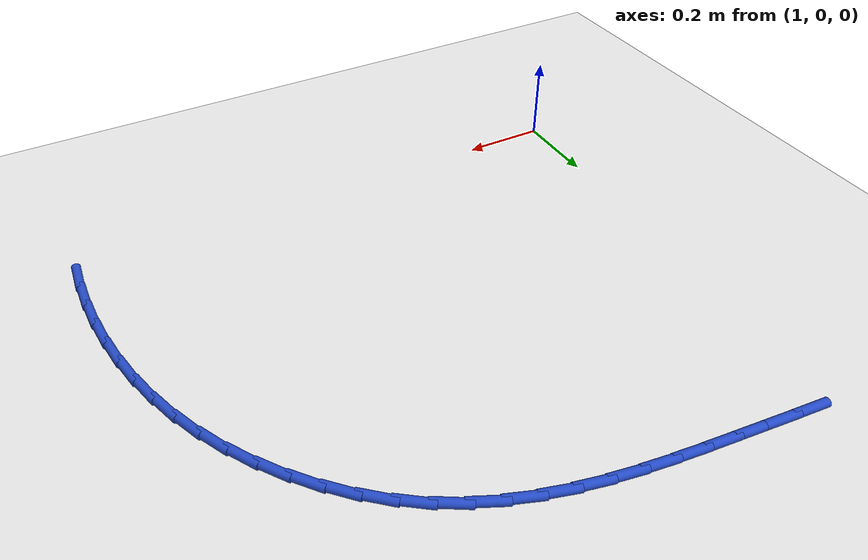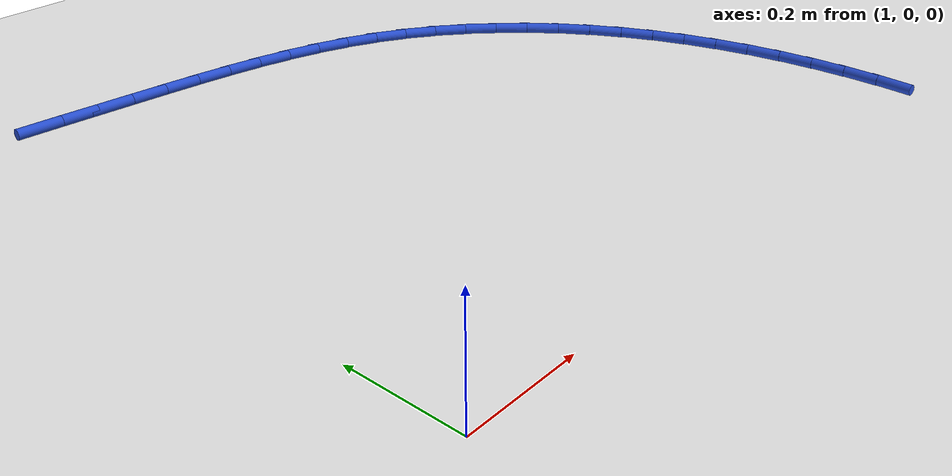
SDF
<sdf version="1.6">
 <world name="default">
  <model name="ground_plane">
   <static>1</static>
   <link name="link">
    <collision name="collision">
     <geometry><plane><normal>0 0 1</normal><size>100 100</size></plane></geometry>
     <surface><friction><ode><mu>100</mu><mu2>50</mu2></ode></friction></surface>
    </collision>
    <visual name="visual">
     <cast_shadows>0</cast_shadows>
     <geometry><plane><normal>0 0 1</normal><size>100 100</size></plane></geometry>
     <material>
      <script><uri>file://media/materials/scripts/gazebo.material</uri><name>Gazebo/WhiteGlow</name></script>
     </material>
    </visual>
   </link>
  </model>
  <model name="line">
   <link name="link_27">
    <pose>1.1058199554723254 1.0628398194272064 0.01 0 1.57 -0.10254333403064227</pose>
    <collision name="collision">
     <geometry><cylinder><radius>0.01</radius><length>0.08</length></cylinder></geometry>
    </collision>
    <visual name="visual">
     <material>
      <script><name>Gazebo/Blue</name><uri>file://media/materials/scripts/gazebo.material</uri></script>
     </material>
     <geometry><cylinder><radius>0.01</radius><length>0.08</length></cylinder></geometry>
    </visual>
   </link>
   <link name="link_28">
    <pose>1.1717897538264137 1.056051245403698 0.01 0 1.57 -0.11012352474962982</pose>
    <collision name="collision">
     <geometry><cylinder><radius>0.01</radius><length>0.08</length></cylinder></geometry>
    </collision>
    <visual name="visual">
     <material>
      <script><name>Gazebo/Blue</name><uri>file://media/materials/scripts/gazebo.material</uri></script>
     </material>
     <geometry><cylinder><radius>0.01</radius><length>0.08</length></cylinder></geometry>
    </visual>
   </link>
   <link name="link_29">
    <pose>1.2378573557714145 1.0487460939820261 0.01 0 1.57 -0.10984799863473728</pose>
    <collision name="collision">
     <geometry><cylinder><radius>0.01</radius><length>0.08</length></cylinder></geometry>
    </collision>
    <visual name="visual">
     <material>
      <script><name>Gazebo/Blue</name><uri>file://media/materials/scripts/gazebo.material</uri></script>
     </material>
     <geometry><cylinder><radius>0.01</radius><length>0.08</length></cylinder></geometry>
    </visual>
   </link>
   <link name="link_30">
    <pose>1.3037863648337324 1.041474653584059 0.01 0 1.57 -0.11503047317858109</pose>
    <collision name="collision">
     <geometry><cylinder><radius>0.01</radius><length>0.08</length></cylinder></geometry>
    </collision>
    <visual name="visual">
     <material>
      <script><name>Gazebo/Blue</name><uri>file://media/materials/scripts/gazebo.material</uri></script>
     </material>
     <geometry><cylinder><radius>0.01</radius><length>0.08</length></cylinder></geometry>
    </visual>
   </link>
   <link name="link_31">
    <pose>1.3693351823078963 1.0339011081804632 0.01 0 1.57 -0.13002454433700933</pose>
    <collision name="collision">
     <geometry><cylinder><radius>0.01</radius><length>0.08</length></cylinder></geometry>
    </collision>
    <visual name="visual">
     <material>
      <script><name>Gazebo/Blue</name><uri>file://media/materials/scripts/gazebo.material</uri></script>
     </material>
     <geometry><cylinder><radius>0.01</radius><length>0.08</length></cylinder></geometry>
    </visual>
   </link>
   <link name="link_32">
    <pose>1.434260575463188 1.0254113156156623 0.01 0 1.57 -0.1551659558947544</pose>
    <collision name="collision">
     <geometry><cylinder><radius>0.01</radius><length>0.08</length></cylinder></geometry>
    </collision>
    <visual name="visual">
     <material>
      <script><name>Gazebo/Blue</name><uri>file://media/materials/scripts/gazebo.material</uri></script>
     </material>
     <geometry><cylinder><radius>0.01</radius><length>0.08</length></cylinder></geometry>
    </visual>
   </link>
   <link name="link_33">
    <pose>1.4983193109811568 1.0153910336247927 0.01 0 1.57 -0.1908991197407137</pose>
    <collision name="collision">
     <geometry><cylinder><radius>0.01</radius><length>0.08</length></cylinder></geometry>
    </collision>
    <visual name="visual">
     <material>
      <script><name>Gazebo/Blue</name><uri>file://media/materials/scripts/gazebo.material</uri></script>
     </material>
     <geometry><cylinder><radius>0.01</radius><length>0.08</length></cylinder></geometry>
    </visual>
   </link>
   <link name="link_34">
    <pose>1.5612681555433516 1.0032260199429912 0.01 0 1.57 -0.23770852791926725</pose>
    <collision name="collision">
     <geometry><cylinder><radius>0.01</radius><length>0.08</length></cylinder></geometry>
    </collision>
    <visual name="visual">
     <material>
      <script><name>Gazebo/Blue</name><uri>file://media/materials/scripts/gazebo.material</uri></script>
     </material>
     <geometry><cylinder><radius>0.01</radius><length>0.08</length></cylinder></geometry>
    </visual>
   </link>
   <link name="link_35">
    <pose>1.6228638758313236 0.9883020323053939 0.01 0 1.57 -0.2959979413517553</pose>
    <collision name="collision">
     <geometry><cylinder><radius>0.01</radius><length>0.08</length></cylinder></geometry>
    </collision>
    <visual name="visual">
     <material>
      <script><name>Gazebo/Blue</name><uri>file://media/materials/scripts/gazebo.material</uri></script>
     </material>
     <geometry><cylinder><radius>0.01</radius><length>0.08</length></cylinder></geometry>
    </visual>
   </link>
   <link name="link_36">
    <pose>1.682863238526621 0.9700048284471373 0.01 0 1.57 -0.36590784254636405</pose>
    <collision name="collision">
     <geometry><cylinder><radius>0.01</radius><length>0.08</length></cylinder></geometry>
    </collision>
    <visual name="visual">
     <material>
      <script><name>Gazebo/Blue</name><uri>file://media/materials/scripts/gazebo.material</uri></script>
     </material>
     <geometry><cylinder><radius>0.01</radius><length>0.08</length></cylinder></geometry>
    </visual>
   </link>
   <link name="link_37">
    <pose>1.7410230103107933 0.9477201661033575 0.01 0 1.57 -0.447076793574274</pose>
    <collision name="collision">
     <geometry><cylinder><radius>0.01</radius><length>0.08</length></cylinder></geometry>
    </collision>
    <visual name="visual">
     <material>
      <script><name>Gazebo/Blue</name><uri>file://media/materials/scripts/gazebo.material</uri></script>
     </material>
     <geometry><cylinder><radius>0.01</radius><length>0.08</length></cylinder></geometry>
    </visual>
   </link>
   <link name="link_38">
    <pose>1.7970999578653912 0.9208338030091914 0.01 0 1.57 -0.5378250684793039</pose>
    <collision name="collision">
     <geometry><cylinder><radius>0.01</radius><length>0.08</length></cylinder></geometry>
    </collision>
    <visual name="visual">
     <material>
      <script><name>Gazebo/Blue</name><uri>file://media/materials/scripts/gazebo.material</uri></script>
     </material>
     <geometry><cylinder><radius>0.01</radius><length>0.08</length></cylinder></geometry>
    </visual>
   </link>
   <link name="link_39">
    <pose>1.8508497279519933 0.8887732987692444 0.01 0 1.57 -0.6287752637384998</pose>
    <collision name="collision">
     <geometry><cylinder><radius>0.01</radius><length>0.08</length></cylinder></geometry>
    </collision>
    <visual name="visual">
     <material>
      <script><name>Gazebo/Blue</name><uri>file://media/materials/scripts/gazebo.material</uri></script>
     </material>
     <geometry><cylinder><radius>0.01</radius><length>0.08</length></cylinder></geometry>
    </visual>
   </link>
   <link name="link_40">
    <pose>1.9020118958371275 0.8515660938330911 0.01 0 1.57 -0.714275087071141</pose>
    <collision name="collision">
     <geometry><cylinder><radius>0.01</radius><length>0.08</length></cylinder></geometry>
    </collision>
    <visual name="visual">
     <material>
      <script><name>Gazebo/Blue</name><uri>file://media/materials/scripts/gazebo.material</uri></script>
     </material>
     <geometry><cylinder><radius>0.01</radius><length>0.08</length></cylinder></geometry>
    </visual>
   </link>
   <link name="link_41">
    <pose>1.9503140065613926 0.8096886660343282 0.01 0 1.57 -0.7951647103295519</pose>
    <collision name="collision">
     <geometry><cylinder><radius>0.01</radius><length>0.08</length></cylinder></geometry>
    </collision>
    <visual name="visual">
     <material>
      <script><name>Gazebo/Blue</name><uri>file://media/materials/scripts/gazebo.material</uri></script>
     </material>
     <geometry><cylinder><radius>0.01</radius><length>0.08</length></cylinder></geometry>
    </visual>
   </link>
   <link name="link_42">
    <pose>1.9954833148122695 0.7636283308588169 0.01 0 1.57 -0.872504479378265</pose>
    <collision name="collision">
     <geometry><cylinder><radius>0.01</radius><length>0.08</length></cylinder></geometry>
    </collision>
    <visual name="visual">
     <material>
      <script><name>Gazebo/Blue</name><uri>file://media/materials/scripts/gazebo.material</uri></script>
     </material>
     <geometry><cylinder><radius>0.01</radius><length>0.08</length></cylinder></geometry>
    </visual>
   </link>
   <link name="link_43">
    <pose>2.0372470752772394 0.7138724037924201 0.01 0 1.57 -0.9473798382027793</pose>
    <collision name="collision">
     <geometry><cylinder><radius>0.01</radius><length>0.08</length></cylinder></geometry>
    </collision>
    <visual name="visual">
     <material>
      <script><name>Gazebo/Blue</name><uri>file://media/materials/scripts/gazebo.material</uri></script>
     </material>
     <geometry><cylinder><radius>0.01</radius><length>0.08</length></cylinder></geometry>
    </visual>
   </link>
   <link name="link_44">
    <pose>2.0753325426437805 0.6609082003209994 0.01 0 1.57 -1.0208803284860288</pose>
    <collision name="collision">
     <geometry><cylinder><radius>0.01</radius><length>0.08</length></cylinder></geometry>
    </collision>
    <visual name="visual">
     <material>
      <script><name>Gazebo/Blue</name><uri>file://media/materials/scripts/gazebo.material</uri></script>
     </material>
     <geometry><cylinder><radius>0.01</radius><length>0.08</length></cylinder></geometry>
    </visual>
   </link>
   <link name="link_45">
    <pose>2.1094669715993737 0.6052230359304167 0.01 0 1.57 -1.0940935851551947</pose>
    <collision name="collision">
     <geometry><cylinder><radius>0.01</radius><length>0.08</length></cylinder></geometry>
    </collision>
    <visual name="visual">
     <material>
      <script><name>Gazebo/Blue</name><uri>file://media/materials/scripts/gazebo.material</uri></script>
     </material>
     <geometry><cylinder><radius>0.01</radius><length>0.08</length></cylinder></geometry>
    </visual>
   </link>
   <link name="link_46">
    <pose>2.139377905597998 0.5473040474067737 0.01 0 1.57 -1.1670076441086914</pose>
    <collision name="collision">
     <geometry><cylinder><radius>0.01</radius><length>0.08</length></cylinder></geometry>
    </collision>
    <visual name="visual">
     <material>
      <script><name>Gazebo/Blue</name><uri>file://media/materials/scripts/gazebo.material</uri></script>
     </material>
     <geometry><cylinder><radius>0.01</radius><length>0.08</length></cylinder></geometry>
    </visual>
   </link>
   <link name="link_47">
    <pose>2.1648991317385438 0.4875726239027731 0.01 0 1.57 -1.2373305371319234</pose>
    <collision name="collision">
     <geometry><cylinder><radius>0.01</radius><length>0.08</length></cylinder></geometry>
    </collision>
    <visual name="visual">
     <material>
      <script><name>Gazebo/Blue</name><uri>file://media/materials/scripts/gazebo.material</uri></script>
     </material>
     <geometry><cylinder><radius>0.01</radius><length>0.08</length></cylinder></geometry>
    </visual>
   </link>
   <link name="link_48">
    <pose>2.186128725452451 0.4262866028366647 0.01 0 1.57 -1.3045206435470253</pose>
    <collision name="collision">
     <geometry><cylinder><radius>0.01</radius><length>0.08</length></cylinder></geometry>
    </collision>
    <visual name="visual">
     <material>
      <script><name>Gazebo/Blue</name><uri>file://media/materials/scripts/gazebo.material</uri></script>
     </material>
     <geometry><cylinder><radius>0.01</radius><length>0.08</length></cylinder></geometry>
    </visual>
   </link>
   <link name="link_49">
    <pose>2.2032051654679345 0.3636788185204269 0.01 0 1.57 -1.3685383873101222</pose>
    <collision name="collision">
     <geometry><cylinder><radius>0.01</radius><length>0.08</length></cylinder></geometry>
    </collision>
    <visual name="visual">
     <material>
      <script><name>Gazebo/Blue</name><uri>file://media/materials/scripts/gazebo.material</uri></script>
     </material>
     <geometry><cylinder><radius>0.01</radius><length>0.08</length></cylinder></geometry>
    </visual>
   </link>
   <link name="link_50">
    <pose>2.216266930513207 0.29998210526603797 0.01 0 1.57 -1.4294498054431708</pose>
    <collision name="collision">
     <geometry><cylinder><radius>0.01</radius><length>0.08</length></cylinder></geometry>
    </collision>
    <visual name="visual">
     <material>
      <script><name>Gazebo/Blue</name><uri>file://media/materials/scripts/gazebo.material</uri></script>
     </material>
     <geometry><cylinder><radius>0.01</radius><length>0.08</length></cylinder></geometry>
    </visual>
   </link>
   <link name="link_51">
    <pose>2.2254524993164804 0.23542929738547633 0.01 0 1.57 -1.4874034987024283</pose>
    <collision name="collision">
     <geometry><cylinder><radius>0.01</radius><length>0.08</length></cylinder></geometry>
    </collision>
    <visual name="visual">
     <material>
      <script><name>Gazebo/Blue</name><uri>file://media/materials/scripts/gazebo.material</uri></script>
     </material>
     <geometry><cylinder><radius>0.01</radius><length>0.08</length></cylinder></geometry>
    </visual>
   </link>
   <link name="link_52">
    <pose>2.2309003506059684 0.1702532291907205 0.01 0 1.57 -1.542609324850579</pose>
    <collision name="collision">
     <geometry><cylinder><radius>0.01</radius><length>0.08</length></cylinder></geometry>
    </collision>
    <visual name="visual">
     <material>
      <script><name>Gazebo/Blue</name><uri>file://media/materials/scripts/gazebo.material</uri></script>
     </material>
     <geometry><cylinder><radius>0.01</radius><length>0.08</length></cylinder></geometry>
    </visual>
   </link>
   <link name="link_53">
    <pose>2.2327489631098874 0.10468673499374895 0.01 0 1.57 1.5462722224297696</pose>
    <collision name="collision">
     <geometry><cylinder><radius>0.01</radius><length>0.08</length></cylinder></geometry>
    </collision>
    <visual name="visual">
     <material>
      <script><name>Gazebo/Blue</name><uri>file://media/materials/scripts/gazebo.material</uri></script>
     </material>
     <geometry><cylinder><radius>0.01</radius><length>0.08</length></cylinder></geometry>
    </visual>
   </link>
   <link name="link_54">
    <pose>2.231136815556449 0.03896264910654016 0.01 0 1.57 1.4957734101231042</pose>
    <collision name="collision">
     <geometry><cylinder><radius>0.01</radius><length>0.08</length></cylinder></geometry>
    </collision>
    <visual name="visual">
     <material>
      <script><name>Gazebo/Blue</name><uri>file://media/materials/scripts/gazebo.material</uri></script>
     </material>
     <geometry><cylinder><radius>0.01</radius><length>0.08</length></cylinder></geometry>
    </visual>
   </link>
  </model>
 </world>
</sdf>
